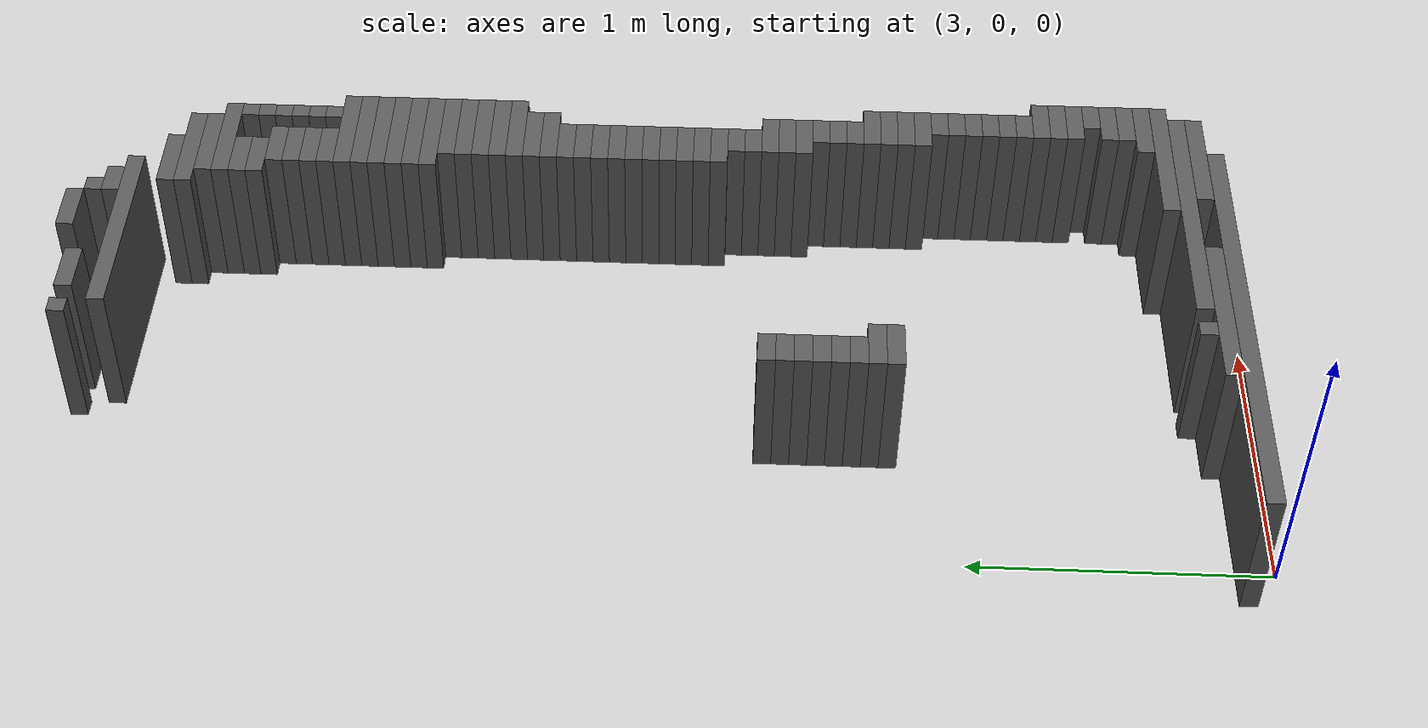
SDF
<sdf version="1.6">
 <world name="my_map">
  <include><uri>model://sun</uri></include>
  <model name="ground_plane">
   <static>true</static>
   <link name="link">
    <collision name="collision">
     <geometry><plane><normal>0 0 1</normal><size>20 20</size></plane></geometry>
    </collision>
    <visual name="visual">
     <geometry><plane><normal>0 0 1</normal><size>20 20</size></plane></geometry>
     <material>
      <script><uri>file://media/materials/scripts/gazebo.material</uri><name>Gazebo/Grey</name></script>
     </material>
    </visual>
   </link>
  </model>
  <model name="my_map_walls">
   <static>true</static>
   <link name="wall_000">
    <pose>4.0500 4.0620 0.2500 0 0 0</pose>
    <collision name="collision"><geometry><box><size>0.1800 0.0600 0.5000</size></box></geometry></collision>
    <visual name="visual">
     <geometry><box><size>0.1800 0.0600 0.5000</size></box></geometry>
     <material><ambient>0.25 0.25 0.25 1</ambient><diffuse>0.35 0.35 0.35 1</diffuse></material>
    </visual>
   </link>
   <link name="wall_001">
    <pose>3.5700 4.0020 0.2500 0 0 0</pose>
    <collision name="collision"><geometry><box><size>0.0600 0.0600 0.5000</size></box></geometry></collision>
    <visual name="visual">
     <geometry><box><size>0.0600 0.0600 0.5000</size></box></geometry>
     <material><ambient>0.25 0.25 0.25 1</ambient><diffuse>0.35 0.35 0.35 1</diffuse></material>
    </visual>
   </link>
   <link name="wall_002">
    <pose>3.7500 4.0020 0.2500 0 0 0</pose>
    <collision name="collision"><geometry><box><size>0.1800 0.0600 0.5000</size></box></geometry></collision>
    <visual name="visual">
     <geometry><box><size>0.1800 0.0600 0.5000</size></box></geometry>
     <material><ambient>0.25 0.25 0.25 1</ambient><diffuse>0.35 0.35 0.35 1</diffuse></material>
    </visual>
   </link>
   <link name="wall_003">
    <pose>4.1700 4.0020 0.2500 0 0 0</pose>
    <collision name="collision"><geometry><box><size>0.0600 0.0600 0.5000</size></box></geometry></collision>
    <visual name="visual">
     <geometry><box><size>0.0600 0.0600 0.5000</size></box></geometry>
     <material><ambient>0.25 0.25 0.25 1</ambient><diffuse>0.35 0.35 0.35 1</diffuse></material>
    </visual>
   </link>
   <link name="wall_005">
    <pose>4.2000 3.9420 0.2500 0 0 0</pose>
    <collision name="collision"><geometry><box><size>0.1200 0.0600 0.5000</size></box></geometry></collision>
    <visual name="visual">
     <geometry><box><size>0.1200 0.0600 0.5000</size></box></geometry>
     <material><ambient>0.25 0.25 0.25 1</ambient><diffuse>0.35 0.35 0.35 1</diffuse></material>
    </visual>
   </link>
   <link name="wall_007">
    <pose>3.9600 3.8820 0.2500 0 0 0</pose>
    <collision name="collision"><geometry><box><size>0.7200 0.0600 0.5000</size></box></geometry></collision>
    <visual name="visual">
     <geometry><box><size>0.7200 0.0600 0.5000</size></box></geometry>
     <material><ambient>0.25 0.25 0.25 1</ambient><diffuse>0.35 0.35 0.35 1</diffuse></material>
    </visual>
   </link>
   <link name="wall_012">
    <pose>4.3200 3.7620 0.2500 0 0 0</pose>
    <collision name="collision"><geometry><box><size>0.2400 0.0600 0.5000</size></box></geometry></collision>
    <visual name="visual">
     <geometry><box><size>0.2400 0.0600 0.5000</size></box></geometry>
     <material><ambient>0.25 0.25 0.25 1</ambient><diffuse>0.35 0.35 0.35 1</diffuse></material>
    </visual>
   </link>
   <link name="wall_014">
    <pose>4.3800 3.7020 0.2500 0 0 0</pose>
    <collision name="collision"><geometry><box><size>0.3600 0.0600 0.5000</size></box></geometry></collision>
    <visual name="visual">
     <geometry><box><size>0.3600 0.0600 0.5000</size></box></geometry>
     <material><ambient>0.25 0.25 0.25 1</ambient><diffuse>0.35 0.35 0.35 1</diffuse></material>
    </visual>
   </link>
   <link name="wall_019">
    <pose>4.4100 3.6420 0.2500 0 0 0</pose>
    <collision name="collision"><geometry><box><size>0.3000 0.0600 0.5000</size></box></geometry></collision>
    <visual name="visual">
     <geometry><box><size>0.3000 0.0600 0.5000</size></box></geometry>
     <material><ambient>0.25 0.25 0.25 1</ambient><diffuse>0.35 0.35 0.35 1</diffuse></material>
    </visual>
   </link>
   <link name="wall_025">
    <pose>4.4400 3.5820 0.2500 0 0 0</pose>
    <collision name="collision"><geometry><box><size>0.3600 0.0600 0.5000</size></box></geometry></collision>
    <visual name="visual">
     <geometry><box><size>0.3600 0.0600 0.5000</size></box></geometry>
     <material><ambient>0.25 0.25 0.25 1</ambient><diffuse>0.35 0.35 0.35 1</diffuse></material>
    </visual>
   </link>
   <link name="wall_027">
    <pose>4.3500 3.5220 0.2500 0 0 0</pose>
    <collision name="collision"><geometry><box><size>0.1800 0.0600 0.5000</size></box></geometry></collision>
    <visual name="visual">
     <geometry><box><size>0.1800 0.0600 0.5000</size></box></geometry>
     <material><ambient>0.25 0.25 0.25 1</ambient><diffuse>0.35 0.35 0.35 1</diffuse></material>
    </visual>
   </link>
   <link name="wall_028">
    <pose>4.5900 3.5220 0.2500 0 0 0</pose>
    <collision name="collision"><geometry><box><size>0.0600 0.0600 0.5000</size></box></geometry></collision>
    <visual name="visual">
     <geometry><box><size>0.0600 0.0600 0.5000</size></box></geometry>
     <material><ambient>0.25 0.25 0.25 1</ambient><diffuse>0.35 0.35 0.35 1</diffuse></material>
    </visual>
   </link>
   <link name="wall_030">
    <pose>4.3500 3.4620 0.2500 0 0 0</pose>
    <collision name="collision"><geometry><box><size>0.1800 0.0600 0.5000</size></box></geometry></collision>
    <visual name="visual">
     <geometry><box><size>0.1800 0.0600 0.5000</size></box></geometry>
     <material><ambient>0.25 0.25 0.25 1</ambient><diffuse>0.35 0.35 0.35 1</diffuse></material>
    </visual>
   </link>
   <link name="wall_031">
    <pose>4.5900 3.4620 0.2500 0 0 0</pose>
    <collision name="collision"><geometry><box><size>0.0600 0.0600 0.5000</size></box></geometry></collision>
    <visual name="visual">
     <geometry><box><size>0.0600 0.0600 0.5000</size></box></geometry>
     <material><ambient>0.25 0.25 0.25 1</ambient><diffuse>0.35 0.35 0.35 1</diffuse></material>
    </visual>
   </link>
   <link name="wall_033">
    <pose>4.4100 3.4020 0.2500 0 0 0</pose>
    <collision name="collision"><geometry><box><size>0.1800 0.0600 0.5000</size></box></geometry></collision>
    <visual name="visual">
     <geometry><box><size>0.1800 0.0600 0.5000</size></box></geometry>
     <material><ambient>0.25 0.25 0.25 1</ambient><diffuse>0.35 0.35 0.35 1</diffuse></material>
    </visual>
   </link>
   <link name="wall_034">
    <pose>4.5900 3.4020 0.2500 0 0 0</pose>
    <collision name="collision"><geometry><box><size>0.0600 0.0600 0.5000</size></box></geometry></collision>
    <visual name="visual">
     <geometry><box><size>0.0600 0.0600 0.5000</size></box></geometry>
     <material><ambient>0.25 0.25 0.25 1</ambient><diffuse>0.35 0.35 0.35 1</diffuse></material>
    </visual>
   </link>
   <link name="wall_036">
    <pose>4.4100 3.3420 0.2500 0 0 0</pose>
    <collision name="collision"><geometry><box><size>0.1800 0.0600 0.5000</size></box></geometry></collision>
    <visual name="visual">
     <geometry><box><size>0.1800 0.0600 0.5000</size></box></geometry>
     <material><ambient>0.25 0.25 0.25 1</ambient><diffuse>0.35 0.35 0.35 1</diffuse></material>
    </visual>
   </link>
   <link name="wall_037">
    <pose>4.5900 3.3420 0.2500 0 0 0</pose>
    <collision name="collision"><geometry><box><size>0.0600 0.0600 0.5000</size></box></geometry></collision>
    <visual name="visual">
     <geometry><box><size>0.0600 0.0600 0.5000</size></box></geometry>
     <material><ambient>0.25 0.25 0.25 1</ambient><diffuse>0.35 0.35 0.35 1</diffuse></material>
    </visual>
   </link>
   <link name="wall_039">
    <pose>4.4100 3.2820 0.2500 0 0 0</pose>
    <collision name="collision"><geometry><box><size>0.1800 0.0600 0.5000</size></box></geometry></collision>
    <visual name="visual">
     <geometry><box><size>0.1800 0.0600 0.5000</size></box></geometry>
     <material><ambient>0.25 0.25 0.25 1</ambient><diffuse>0.35 0.35 0.35 1</diffuse></material>
    </visual>
   </link>
   <link name="wall_040">
    <pose>4.5900 3.2820 0.2500 0 0 0</pose>
    <collision name="collision"><geometry><box><size>0.0600 0.0600 0.5000</size></box></geometry></collision>
    <visual name="visual">
     <geometry><box><size>0.0600 0.0600 0.5000</size></box></geometry>
     <material><ambient>0.25 0.25 0.25 1</ambient><diffuse>0.35 0.35 0.35 1</diffuse></material>
    </visual>
   </link>
   <link name="wall_042">
    <pose>4.4100 3.2220 0.2500 0 0 0</pose>
    <collision name="collision"><geometry><box><size>0.1800 0.0600 0.5000</size></box></geometry></collision>
    <visual name="visual">
     <geometry><box><size>0.1800 0.0600 0.5000</size></box></geometry>
     <material><ambient>0.25 0.25 0.25 1</ambient><diffuse>0.35 0.35 0.35 1</diffuse></material>
    </visual>
   </link>
   <link name="wall_043">
    <pose>4.5900 3.2220 0.2500 0 0 0</pose>
    <collision name="collision"><geometry><box><size>0.0600 0.0600 0.5000</size></box></geometry></collision>
    <visual name="visual">
     <geometry><box><size>0.0600 0.0600 0.5000</size></box></geometry>
     <material><ambient>0.25 0.25 0.25 1</ambient><diffuse>0.35 0.35 0.35 1</diffuse></material>
    </visual>
   </link>
   <link name="wall_045">
    <pose>4.5000 3.1620 0.2500 0 0 0</pose>
    <collision name="collision"><geometry><box><size>0.3600 0.0600 0.5000</size></box></geometry></collision>
    <visual name="visual">
     <geometry><box><size>0.3600 0.0600 0.5000</size></box></geometry>
     <material><ambient>0.25 0.25 0.25 1</ambient><diffuse>0.35 0.35 0.35 1</diffuse></material>
    </visual>
   </link>
   <link name="wall_048">
    <pose>4.5000 3.1020 0.2500 0 0 0</pose>
    <collision name="collision"><geometry><box><size>0.3600 0.0600 0.5000</size></box></geometry></collision>
    <visual name="visual">
     <geometry><box><size>0.3600 0.0600 0.5000</size></box></geometry>
     <material><ambient>0.25 0.25 0.25 1</ambient><diffuse>0.35 0.35 0.35 1</diffuse></material>
    </visual>
   </link>
   <link name="wall_051">
    <pose>4.5000 3.0420 0.2500 0 0 0</pose>
    <collision name="collision"><geometry><box><size>0.3600 0.0600 0.5000</size></box></geometry></collision>
    <visual name="visual">
     <geometry><box><size>0.3600 0.0600 0.5000</size></box></geometry>
     <material><ambient>0.25 0.25 0.25 1</ambient><diffuse>0.35 0.35 0.35 1</diffuse></material>
    </visual>
   </link>
   <link name="wall_054">
    <pose>4.5000 2.9820 0.2500 0 0 0</pose>
    <collision name="collision"><geometry><box><size>0.3600 0.0600 0.5000</size></box></geometry></collision>
    <visual name="visual">
     <geometry><box><size>0.3600 0.0600 0.5000</size></box></geometry>
     <material><ambient>0.25 0.25 0.25 1</ambient><diffuse>0.35 0.35 0.35 1</diffuse></material>
    </visual>
   </link>
   <link name="wall_056">
    <pose>4.5000 2.9220 0.2500 0 0 0</pose>
    <collision name="collision"><geometry><box><size>0.3600 0.0600 0.5000</size></box></geometry></collision>
    <visual name="visual">
     <geometry><box><size>0.3600 0.0600 0.5000</size></box></geometry>
     <material><ambient>0.25 0.25 0.25 1</ambient><diffuse>0.35 0.35 0.35 1</diffuse></material>
    </visual>
   </link>
   <link name="wall_059">
    <pose>4.5000 2.8620 0.2500 0 0 0</pose>
    <collision name="collision"><geometry><box><size>0.3600 0.0600 0.5000</size></box></geometry></collision>
    <visual name="visual">
     <geometry><box><size>0.3600 0.0600 0.5000</size></box></geometry>
     <material><ambient>0.25 0.25 0.25 1</ambient><diffuse>0.35 0.35 0.35 1</diffuse></material>
    </visual>
   </link>
   <link name="wall_063">
    <pose>4.5300 2.8020 0.2500 0 0 0</pose>
    <collision name="collision"><geometry><box><size>0.3000 0.0600 0.5000</size></box></geometry></collision>
    <visual name="visual">
     <geometry><box><size>0.3000 0.0600 0.5000</size></box></geometry>
     <material><ambient>0.25 0.25 0.25 1</ambient><diffuse>0.35 0.35 0.35 1</diffuse></material>
    </visual>
   </link>
   <link name="wall_067">
    <pose>4.5300 2.7420 0.2500 0 0 0</pose>
    <collision name="collision"><geometry><box><size>0.3000 0.0600 0.5000</size></box></geometry></collision>
    <visual name="visual">
     <geometry><box><size>0.3000 0.0600 0.5000</size></box></geometry>
     <material><ambient>0.25 0.25 0.25 1</ambient><diffuse>0.35 0.35 0.35 1</diffuse></material>
    </visual>
   </link>
   <link name="wall_072">
    <pose>4.5300 2.6820 0.2500 0 0 0</pose>
    <collision name="collision"><geometry><box><size>0.3000 0.0600 0.5000</size></box></geometry></collision>
    <visual name="visual">
     <geometry><box><size>0.3000 0.0600 0.5000</size></box></geometry>
     <material><ambient>0.25 0.25 0.25 1</ambient><diffuse>0.35 0.35 0.35 1</diffuse></material>
    </visual>
   </link>
   <link name="wall_077">
    <pose>4.5300 2.6220 0.2500 0 0 0</pose>
    <collision name="collision"><geometry><box><size>0.3000 0.0600 0.5000</size></box></geometry></collision>
    <visual name="visual">
     <geometry><box><size>0.3000 0.0600 0.5000</size></box></geometry>
     <material><ambient>0.25 0.25 0.25 1</ambient><diffuse>0.35 0.35 0.35 1</diffuse></material>
    </visual>
   </link>
   <link name="wall_081">
    <pose>4.5300 2.5620 0.2500 0 0 0</pose>
    <collision name="collision"><geometry><box><size>0.3000 0.0600 0.5000</size></box></geometry></collision>
    <visual name="visual">
     <geometry><box><size>0.3000 0.0600 0.5000</size></box></geometry>
     <material><ambient>0.25 0.25 0.25 1</ambient><diffuse>0.35 0.35 0.35 1</diffuse></material>
    </visual>
   </link>
   <link name="wall_085">
    <pose>4.5000 2.5020 0.2500 0 0 0</pose>
    <collision name="collision"><geometry><box><size>0.2400 0.0600 0.5000</size></box></geometry></collision>
    <visual name="visual">
     <geometry><box><size>0.2400 0.0600 0.5000</size></box></geometry>
     <material><ambient>0.25 0.25 0.25 1</ambient><diffuse>0.35 0.35 0.35 1</diffuse></material>
    </visual>
   </link>
   <link name="wall_089">
    <pose>4.5000 2.4420 0.2500 0 0 0</pose>
    <collision name="collision"><geometry><box><size>0.2400 0.0600 0.5000</size></box></geometry></collision>
    <visual name="visual">
     <geometry><box><size>0.2400 0.0600 0.5000</size></box></geometry>
     <material><ambient>0.25 0.25 0.25 1</ambient><diffuse>0.35 0.35 0.35 1</diffuse></material>
    </visual>
   </link>
   <link name="wall_093">
    <pose>4.4700 2.3820 0.2500 0 0 0</pose>
    <collision name="collision"><geometry><box><size>0.1800 0.0600 0.5000</size></box></geometry></collision>
    <visual name="visual">
     <geometry><box><size>0.1800 0.0600 0.5000</size></box></geometry>
     <material><ambient>0.25 0.25 0.25 1</ambient><diffuse>0.35 0.35 0.35 1</diffuse></material>
    </visual>
   </link>
   <link name="wall_097">
    <pose>4.4700 2.3220 0.2500 0 0 0</pose>
    <collision name="collision"><geometry><box><size>0.1800 0.0600 0.5000</size></box></geometry></collision>
    <visual name="visual">
     <geometry><box><size>0.1800 0.0600 0.5000</size></box></geometry>
     <material><ambient>0.25 0.25 0.25 1</ambient><diffuse>0.35 0.35 0.35 1</diffuse></material>
    </visual>
   </link>
   <link name="wall_101">
    <pose>4.4700 2.2620 0.2500 0 0 0</pose>
    <collision name="collision"><geometry><box><size>0.1800 0.0600 0.5000</size></box></geometry></collision>
    <visual name="visual">
     <geometry><box><size>0.1800 0.0600 0.5000</size></box></geometry>
     <material><ambient>0.25 0.25 0.25 1</ambient><diffuse>0.35 0.35 0.35 1</diffuse></material>
    </visual>
   </link>
   <link name="wall_105">
    <pose>4.4700 2.2020 0.2500 0 0 0</pose>
    <collision name="collision"><geometry><box><size>0.1800 0.0600 0.5000</size></box></geometry></collision>
    <visual name="visual">
     <geometry><box><size>0.1800 0.0600 0.5000</size></box></geometry>
     <material><ambient>0.25 0.25 0.25 1</ambient><diffuse>0.35 0.35 0.35 1</diffuse></material>
    </visual>
   </link>
   <link name="wall_109">
    <pose>4.4700 2.1420 0.2500 0 0 0</pose>
    <collision name="collision"><geometry><box><size>0.1800 0.0600 0.5000</size></box></geometry></collision>
    <visual name="visual">
     <geometry><box><size>0.1800 0.0600 0.5000</size></box></geometry>
     <material><ambient>0.25 0.25 0.25 1</ambient><diffuse>0.35 0.35 0.35 1</diffuse></material>
    </visual>
   </link>
   <link name="wall_113">
    <pose>4.4700 2.0820 0.2500 0 0 0</pose>
    <collision name="collision"><geometry><box><size>0.1800 0.0600 0.5000</size></box></geometry></collision>
    <visual name="visual">
     <geometry><box><size>0.1800 0.0600 0.5000</size></box></geometry>
     <material><ambient>0.25 0.25 0.25 1</ambient><diffuse>0.35 0.35 0.35 1</diffuse></material>
    </visual>
   </link>
   <link name="wall_117">
    <pose>4.4700 2.0220 0.2500 0 0 0</pose>
    <collision name="collision"><geometry><box><size>0.1800 0.0600 0.5000</size></box></geometry></collision>
    <visual name="visual">
     <geometry><box><size>0.1800 0.0600 0.5000</size></box></geometry>
     <material><ambient>0.25 0.25 0.25 1</ambient><diffuse>0.35 0.35 0.35 1</diffuse></material>
    </visual>
   </link>
   <link name="wall_121">
    <pose>4.4700 1.9620 0.2500 0 0 0</pose>
    <collision name="collision"><geometry><box><size>0.1800 0.0600 0.5000</size></box></geometry></collision>
    <visual name="visual">
     <geometry><box><size>0.1800 0.0600 0.5000</size></box></geometry>
     <material><ambient>0.25 0.25 0.25 1</ambient><diffuse>0.35 0.35 0.35 1</diffuse></material>
    </visual>
   </link>
   <link name="wall_125">
    <pose>4.4700 1.9020 0.2500 0 0 0</pose>
    <collision name="collision"><geometry><box><size>0.1800 0.0600 0.5000</size></box></geometry></collision>
    <visual name="visual">
     <geometry><box><size>0.1800 0.0600 0.5000</size></box></geometry>
     <material><ambient>0.25 0.25 0.25 1</ambient><diffuse>0.35 0.35 0.35 1</diffuse></material>
    </visual>
   </link>
   <link name="wall_130">
    <pose>4.4700 1.8420 0.2500 0 0 0</pose>
    <collision name="collision"><geometry><box><size>0.1800 0.0600 0.5000</size></box></geometry></collision>
    <visual name="visual">
     <geometry><box><size>0.1800 0.0600 0.5000</size></box></geometry>
     <material><ambient>0.25 0.25 0.25 1</ambient><diffuse>0.35 0.35 0.35 1</diffuse></material>
    </visual>
   </link>
   <link name="wall_135">
    <pose>4.5000 1.7820 0.2500 0 0 0</pose>
    <collision name="collision"><geometry><box><size>0.1200 0.0600 0.5000</size></box></geometry></collision>
    <visual name="visual">
     <geometry><box><size>0.1200 0.0600 0.5000</size></box></geometry>
     <material><ambient>0.25 0.25 0.25 1</ambient><diffuse>0.35 0.35 0.35 1</diffuse></material>
    </visual>
   </link>
   <link name="wall_140">
    <pose>4.5000 1.7220 0.2500 0 0 0</pose>
    <collision name="collision"><geometry><box><size>0.1200 0.0600 0.5000</size></box></geometry></collision>
    <visual name="visual">
     <geometry><box><size>0.1200 0.0600 0.5000</size></box></geometry>
     <material><ambient>0.25 0.25 0.25 1</ambient><diffuse>0.35 0.35 0.35 1</diffuse></material>
    </visual>
   </link>
   <link name="wall_143">
    <pose>3.4800 1.6620 0.2500 0 0 0</pose>
    <collision name="collision"><geometry><box><size>0.1200 0.0600 0.5000</size></box></geometry></collision>
    <visual name="visual">
     <geometry><box><size>0.1200 0.0600 0.5000</size></box></geometry>
     <material><ambient>0.25 0.25 0.25 1</ambient><diffuse>0.35 0.35 0.35 1</diffuse></material>
    </visual>
   </link>
   <link name="wall_144">
    <pose>4.5300 1.6620 0.2500 0 0 0</pose>
    <collision name="collision"><geometry><box><size>0.1800 0.0600 0.5000</size></box></geometry></collision>
    <visual name="visual">
     <geometry><box><size>0.1800 0.0600 0.5000</size></box></geometry>
     <material><ambient>0.25 0.25 0.25 1</ambient><diffuse>0.35 0.35 0.35 1</diffuse></material>
    </visual>
   </link>
   <link name="wall_147">
    <pose>3.4800 1.6020 0.2500 0 0 0</pose>
    <collision name="collision"><geometry><box><size>0.1200 0.0600 0.5000</size></box></geometry></collision>
    <visual name="visual">
     <geometry><box><size>0.1200 0.0600 0.5000</size></box></geometry>
     <material><ambient>0.25 0.25 0.25 1</ambient><diffuse>0.35 0.35 0.35 1</diffuse></material>
    </visual>
   </link>
   <link name="wall_148">
    <pose>4.5300 1.6020 0.2500 0 0 0</pose>
    <collision name="collision"><geometry><box><size>0.1800 0.0600 0.5000</size></box></geometry></collision>
    <visual name="visual">
     <geometry><box><size>0.1800 0.0600 0.5000</size></box></geometry>
     <material><ambient>0.25 0.25 0.25 1</ambient><diffuse>0.35 0.35 0.35 1</diffuse></material>
    </visual>
   </link>
   <link name="wall_152">
    <pose>3.4800 1.5420 0.2500 0 0 0</pose>
    <collision name="collision"><geometry><box><size>0.1200 0.0600 0.5000</size></box></geometry></collision>
    <visual name="visual">
     <geometry><box><size>0.1200 0.0600 0.5000</size></box></geometry>
     <material><ambient>0.25 0.25 0.25 1</ambient><diffuse>0.35 0.35 0.35 1</diffuse></material>
    </visual>
   </link>
   <link name="wall_153">
    <pose>4.5300 1.5420 0.2500 0 0 0</pose>
    <collision name="collision"><geometry><box><size>0.1800 0.0600 0.5000</size></box></geometry></collision>
    <visual name="visual">
     <geometry><box><size>0.1800 0.0600 0.5000</size></box></geometry>
     <material><ambient>0.25 0.25 0.25 1</ambient><diffuse>0.35 0.35 0.35 1</diffuse></material>
    </visual>
   </link>
   <link name="wall_156">
    <pose>3.4800 1.4820 0.2500 0 0 0</pose>
    <collision name="collision"><geometry><box><size>0.1200 0.0600 0.5000</size></box></geometry></collision>
    <visual name="visual">
     <geometry><box><size>0.1200 0.0600 0.5000</size></box></geometry>
     <material><ambient>0.25 0.25 0.25 1</ambient><diffuse>0.35 0.35 0.35 1</diffuse></material>
    </visual>
   </link>
   <link name="wall_157">
    <pose>4.5600 1.4820 0.2500 0 0 0</pose>
    <collision name="collision"><geometry><box><size>0.1200 0.0600 0.5000</size></box></geometry></collision>
    <visual name="visual">
     <geometry><box><size>0.1200 0.0600 0.5000</size></box></geometry>
     <material><ambient>0.25 0.25 0.25 1</ambient><diffuse>0.35 0.35 0.35 1</diffuse></material>
    </visual>
   </link>
   <link name="wall_159">
    <pose>3.4800 1.4220 0.2500 0 0 0</pose>
    <collision name="collision"><geometry><box><size>0.1200 0.0600 0.5000</size></box></geometry></collision>
    <visual name="visual">
     <geometry><box><size>0.1200 0.0600 0.5000</size></box></geometry>
     <material><ambient>0.25 0.25 0.25 1</ambient><diffuse>0.35 0.35 0.35 1</diffuse></material>
    </visual>
   </link>
   <link name="wall_160">
    <pose>4.5600 1.4220 0.2500 0 0 0</pose>
    <collision name="collision"><geometry><box><size>0.1200 0.0600 0.5000</size></box></geometry></collision>
    <visual name="visual">
     <geometry><box><size>0.1200 0.0600 0.5000</size></box></geometry>
     <material><ambient>0.25 0.25 0.25 1</ambient><diffuse>0.35 0.35 0.35 1</diffuse></material>
    </visual>
   </link>
   <link name="wall_162">
    <pose>3.4800 1.3620 0.2500 0 0 0</pose>
    <collision name="collision"><geometry><box><size>0.1200 0.0600 0.5000</size></box></geometry></collision>
    <visual name="visual">
     <geometry><box><size>0.1200 0.0600 0.5000</size></box></geometry>
     <material><ambient>0.25 0.25 0.25 1</ambient><diffuse>0.35 0.35 0.35 1</diffuse></material>
    </visual>
   </link>
   <link name="wall_163">
    <pose>4.5600 1.3620 0.2500 0 0 0</pose>
    <collision name="collision"><geometry><box><size>0.1200 0.0600 0.5000</size></box></geometry></collision>
    <visual name="visual">
     <geometry><box><size>0.1200 0.0600 0.5000</size></box></geometry>
     <material><ambient>0.25 0.25 0.25 1</ambient><diffuse>0.35 0.35 0.35 1</diffuse></material>
    </visual>
   </link>
   <link name="wall_166">
    <pose>3.5100 1.3020 0.2500 0 0 0</pose>
    <collision name="collision"><geometry><box><size>0.1800 0.0600 0.5000</size></box></geometry></collision>
    <visual name="visual">
     <geometry><box><size>0.1800 0.0600 0.5000</size></box></geometry>
     <material><ambient>0.25 0.25 0.25 1</ambient><diffuse>0.35 0.35 0.35 1</diffuse></material>
    </visual>
   </link>
   <link name="wall_167">
    <pose>4.5900 1.3020 0.2500 0 0 0</pose>
    <collision name="collision"><geometry><box><size>0.1800 0.0600 0.5000</size></box></geometry></collision>
    <visual name="visual">
     <geometry><box><size>0.1800 0.0600 0.5000</size></box></geometry>
     <material><ambient>0.25 0.25 0.25 1</ambient><diffuse>0.35 0.35 0.35 1</diffuse></material>
    </visual>
   </link>
   <link name="wall_169">
    <pose>3.5100 1.2420 0.2500 0 0 0</pose>
    <collision name="collision"><geometry><box><size>0.1800 0.0600 0.5000</size></box></geometry></collision>
    <visual name="visual">
     <geometry><box><size>0.1800 0.0600 0.5000</size></box></geometry>
     <material><ambient>0.25 0.25 0.25 1</ambient><diffuse>0.35 0.35 0.35 1</diffuse></material>
    </visual>
   </link>
   <link name="wall_170">
    <pose>4.5900 1.2420 0.2500 0 0 0</pose>
    <collision name="collision"><geometry><box><size>0.1800 0.0600 0.5000</size></box></geometry></collision>
    <visual name="visual">
     <geometry><box><size>0.1800 0.0600 0.5000</size></box></geometry>
     <material><ambient>0.25 0.25 0.25 1</ambient><diffuse>0.35 0.35 0.35 1</diffuse></material>
    </visual>
   </link>
   <link name="wall_173">
    <pose>4.5900 1.1820 0.2500 0 0 0</pose>
    <collision name="collision"><geometry><box><size>0.1800 0.0600 0.5000</size></box></geometry></collision>
    <visual name="visual">
     <geometry><box><size>0.1800 0.0600 0.5000</size></box></geometry>
     <material><ambient>0.25 0.25 0.25 1</ambient><diffuse>0.35 0.35 0.35 1</diffuse></material>
    </visual>
   </link>
   <link name="wall_176">
    <pose>4.5900 1.1220 0.2500 0 0 0</pose>
    <collision name="collision"><geometry><box><size>0.1800 0.0600 0.5000</size></box></geometry></collision>
    <visual name="visual">
     <geometry><box><size>0.1800 0.0600 0.5000</size></box></geometry>
     <material><ambient>0.25 0.25 0.25 1</ambient><diffuse>0.35 0.35 0.35 1</diffuse></material>
    </visual>
   </link>
   <link name="wall_180">
    <pose>4.6200 1.0620 0.2500 0 0 0</pose>
    <collision name="collision"><geometry><box><size>0.1200 0.0600 0.5000</size></box></geometry></collision>
    <visual name="visual">
     <geometry><box><size>0.1200 0.0600 0.5000</size></box></geometry>
     <material><ambient>0.25 0.25 0.25 1</ambient><diffuse>0.35 0.35 0.35 1</diffuse></material>
    </visual>
   </link>
   <link name="wall_185">
    <pose>4.6200 1.0020 0.2500 0 0 0</pose>
    <collision name="collision"><geometry><box><size>0.1200 0.0600 0.5000</size></box></geometry></collision>
    <visual name="visual">
     <geometry><box><size>0.1200 0.0600 0.5000</size></box></geometry>
     <material><ambient>0.25 0.25 0.25 1</ambient><diffuse>0.35 0.35 0.35 1</diffuse></material>
    </visual>
   </link>
   <link name="wall_188">
    <pose>4.6200 0.9420 0.2500 0 0 0</pose>
    <collision name="collision"><geometry><box><size>0.1200 0.0600 0.5000</size></box></geometry></collision>
    <visual name="visual">
     <geometry><box><size>0.1200 0.0600 0.5000</size></box></geometry>
     <material><ambient>0.25 0.25 0.25 1</ambient><diffuse>0.35 0.35 0.35 1</diffuse></material>
    </visual>
   </link>
   <link name="wall_191">
    <pose>4.6200 0.8820 0.2500 0 0 0</pose>
    <collision name="collision"><geometry><box><size>0.1200 0.0600 0.5000</size></box></geometry></collision>
    <visual name="visual">
     <geometry><box><size>0.1200 0.0600 0.5000</size></box></geometry>
     <material><ambient>0.25 0.25 0.25 1</ambient><diffuse>0.35 0.35 0.35 1</diffuse></material>
    </visual>
   </link>
   <link name="wall_193">
    <pose>4.6200 0.8220 0.2500 0 0 0</pose>
    <collision name="collision"><geometry><box><size>0.1200 0.0600 0.5000</size></box></geometry></collision>
    <visual name="visual">
     <geometry><box><size>0.1200 0.0600 0.5000</size></box></geometry>
     <material><ambient>0.25 0.25 0.25 1</ambient><diffuse>0.35 0.35 0.35 1</diffuse></material>
    </visual>
   </link>
   <link name="wall_195">
    <pose>4.6200 0.7620 0.2500 0 0 0</pose>
    <collision name="collision"><geometry><box><size>0.1200 0.0600 0.5000</size></box></geometry></collision>
    <visual name="visual">
     <geometry><box><size>0.1200 0.0600 0.5000</size></box></geometry>
     <material><ambient>0.25 0.25 0.25 1</ambient><diffuse>0.35 0.35 0.35 1</diffuse></material>
    </visual>
   </link>
   <link name="wall_197">
    <pose>4.6500 0.7020 0.2500 0 0 0</pose>
    <collision name="collision"><geometry><box><size>0.1800 0.0600 0.5000</size></box></geometry></collision>
    <visual name="visual">
     <geometry><box><size>0.1800 0.0600 0.5000</size></box></geometry>
     <material><ambient>0.25 0.25 0.25 1</ambient><diffuse>0.35 0.35 0.35 1</diffuse></material>
    </visual>
   </link>
   <link name="wall_200">
    <pose>4.6500 0.6420 0.2500 0 0 0</pose>
    <collision name="collision"><geometry><box><size>0.1800 0.0600 0.5000</size></box></geometry></collision>
    <visual name="visual">
     <geometry><box><size>0.1800 0.0600 0.5000</size></box></geometry>
     <material><ambient>0.25 0.25 0.25 1</ambient><diffuse>0.35 0.35 0.35 1</diffuse></material>
    </visual>
   </link>
   <link name="wall_203">
    <pose>4.6500 0.5820 0.2500 0 0 0</pose>
    <collision name="collision"><geometry><box><size>0.1800 0.0600 0.5000</size></box></geometry></collision>
    <visual name="visual">
     <geometry><box><size>0.1800 0.0600 0.5000</size></box></geometry>
     <material><ambient>0.25 0.25 0.25 1</ambient><diffuse>0.35 0.35 0.35 1</diffuse></material>
    </visual>
   </link>
   <link name="wall_206">
    <pose>4.6800 0.5220 0.2500 0 0 0</pose>
    <collision name="collision"><geometry><box><size>0.1200 0.0600 0.5000</size></box></geometry></collision>
    <visual name="visual">
     <geometry><box><size>0.1200 0.0600 0.5000</size></box></geometry>
     <material><ambient>0.25 0.25 0.25 1</ambient><diffuse>0.35 0.35 0.35 1</diffuse></material>
    </visual>
   </link>
   <link name="wall_209">
    <pose>4.6500 0.4620 0.2500 0 0 0</pose>
    <collision name="collision"><geometry><box><size>0.1800 0.0600 0.5000</size></box></geometry></collision>
    <visual name="visual">
     <geometry><box><size>0.1800 0.0600 0.5000</size></box></geometry>
     <material><ambient>0.25 0.25 0.25 1</ambient><diffuse>0.35 0.35 0.35 1</diffuse></material>
    </visual>
   </link>
   <link name="wall_212">
    <pose>4.6500 0.4020 0.2500 0 0 0</pose>
    <collision name="collision"><geometry><box><size>0.1800 0.0600 0.5000</size></box></geometry></collision>
    <visual name="visual">
     <geometry><box><size>0.1800 0.0600 0.5000</size></box></geometry>
     <material><ambient>0.25 0.25 0.25 1</ambient><diffuse>0.35 0.35 0.35 1</diffuse></material>
    </visual>
   </link>
   <link name="wall_215">
    <pose>4.6200 0.3420 0.2500 0 0 0</pose>
    <collision name="collision"><geometry><box><size>0.2400 0.0600 0.5000</size></box></geometry></collision>
    <visual name="visual">
     <geometry><box><size>0.2400 0.0600 0.5000</size></box></geometry>
     <material><ambient>0.25 0.25 0.25 1</ambient><diffuse>0.35 0.35 0.35 1</diffuse></material>
    </visual>
   </link>
   <link name="wall_218">
    <pose>4.4700 0.2820 0.2500 0 0 0</pose>
    <collision name="collision"><geometry><box><size>0.5400 0.0600 0.5000</size></box></geometry></collision>
    <visual name="visual">
     <geometry><box><size>0.5400 0.0600 0.5000</size></box></geometry>
     <material><ambient>0.25 0.25 0.25 1</ambient><diffuse>0.35 0.35 0.35 1</diffuse></material>
    </visual>
   </link>
   <link name="wall_222">
    <pose>3.6300 0.2220 0.2500 0 0 0</pose>
    <collision name="collision"><geometry><box><size>0.0600 0.0600 0.5000</size></box></geometry></collision>
    <visual name="visual">
     <geometry><box><size>0.0600 0.0600 0.5000</size></box></geometry>
     <material><ambient>0.25 0.25 0.25 1</ambient><diffuse>0.35 0.35 0.35 1</diffuse></material>
    </visual>
   </link>
   <link name="wall_223">
    <pose>4.2000 0.2220 0.2500 0 0 0</pose>
    <collision name="collision"><geometry><box><size>0.9600 0.0600 0.5000</size></box></geometry></collision>
    <visual name="visual">
     <geometry><box><size>0.9600 0.0600 0.5000</size></box></geometry>
     <material><ambient>0.25 0.25 0.25 1</ambient><diffuse>0.35 0.35 0.35 1</diffuse></material>
    </visual>
   </link>
   <link name="wall_227">
    <pose>3.7200 0.1620 0.2500 0 0 0</pose>
    <collision name="collision"><geometry><box><size>0.6000 0.0600 0.5000</size></box></geometry></collision>
    <visual name="visual">
     <geometry><box><size>0.6000 0.0600 0.5000</size></box></geometry>
     <material><ambient>0.25 0.25 0.25 1</ambient><diffuse>0.35 0.35 0.35 1</diffuse></material>
    </visual>
   </link>
   <link name="wall_228">
    <pose>4.4700 0.1620 0.2500 0 0 0</pose>
    <collision name="collision"><geometry><box><size>0.4200 0.0600 0.5000</size></box></geometry></collision>
    <visual name="visual">
     <geometry><box><size>0.4200 0.0600 0.5000</size></box></geometry>
     <material><ambient>0.25 0.25 0.25 1</ambient><diffuse>0.35 0.35 0.35 1</diffuse></material>
    </visual>
   </link>
   <link name="wall_232">
    <pose>3.6900 0.1020 0.2500 0 0 0</pose>
    <collision name="collision"><geometry><box><size>1.6200 0.0600 0.5000</size></box></geometry></collision>
    <visual name="visual">
     <geometry><box><size>1.6200 0.0600 0.5000</size></box></geometry>
     <material><ambient>0.25 0.25 0.25 1</ambient><diffuse>0.35 0.35 0.35 1</diffuse></material>
    </visual>
   </link>
  </model>
 </world>
</sdf>
